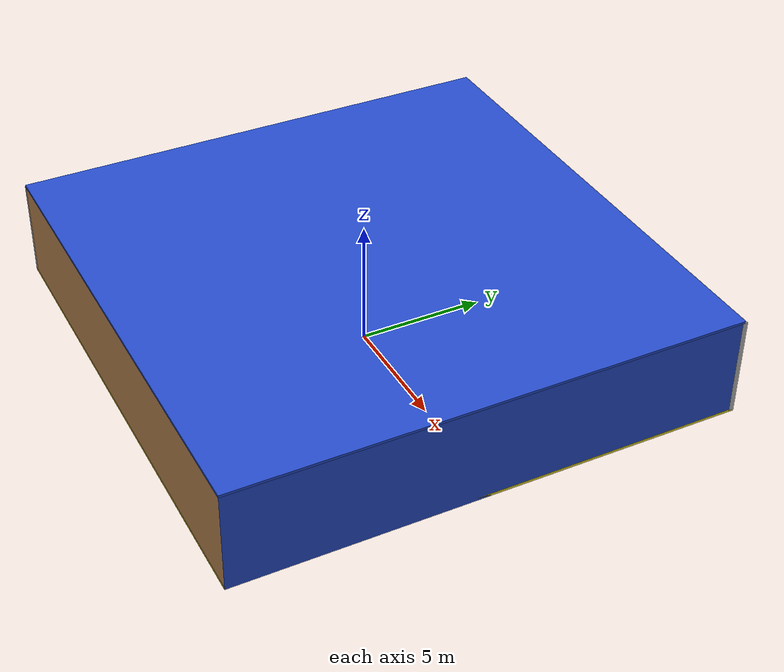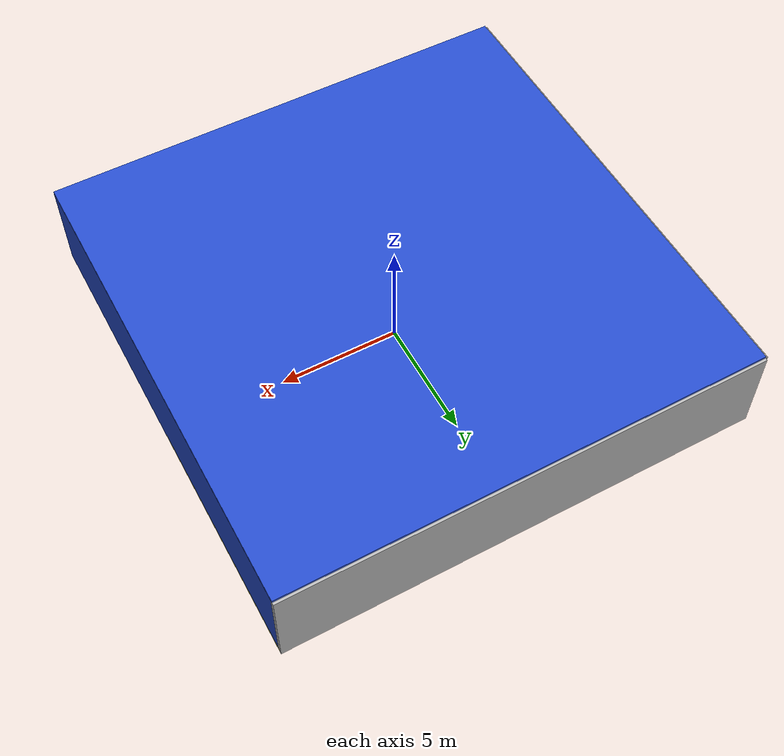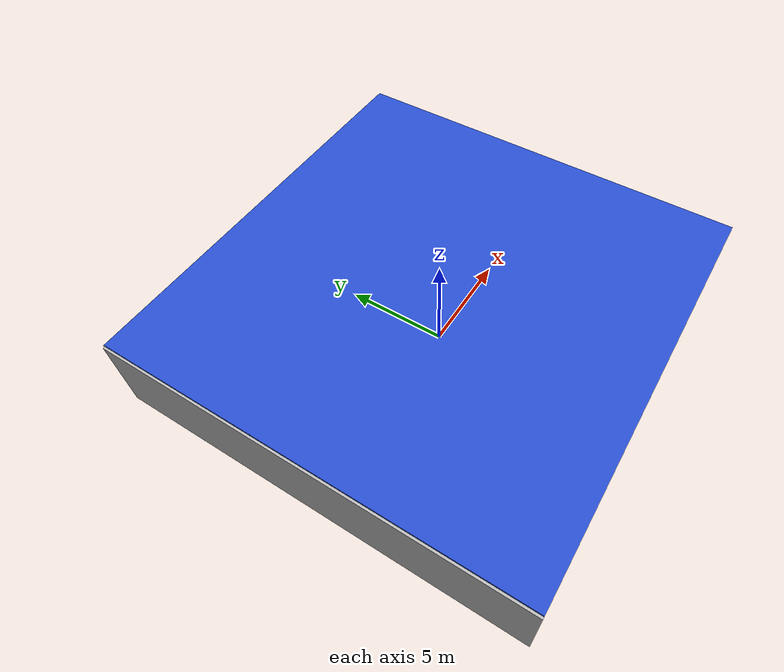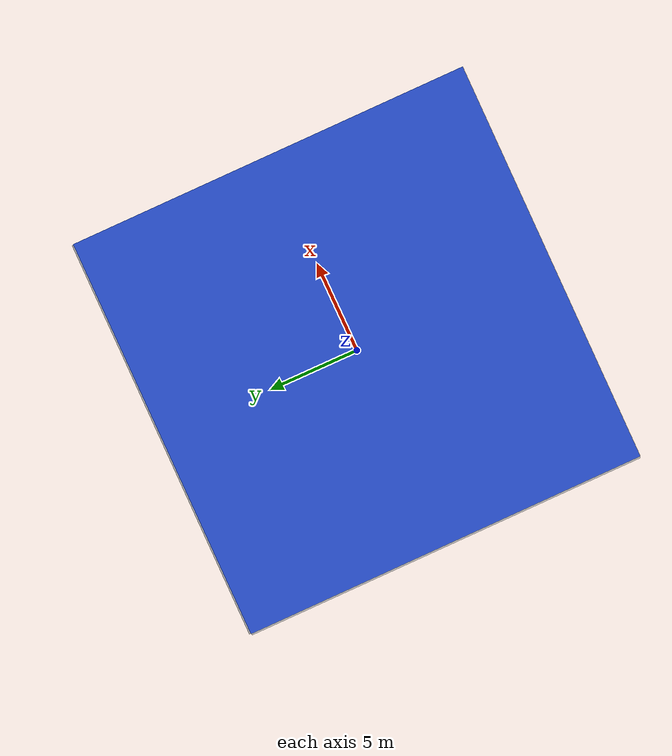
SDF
<sdf version="1.4">
 <world name="default">
  <physics type="ode">
   <max_step_size>0.001</max_step_size>
   <real_time_factor>1</real_time_factor>
   <real_time_update_rate>1000</real_time_update_rate>
   <gravity>0 0 -9.8</gravity>
  </physics>
  <scene><ambient>0.4 0.4 0.4 1</ambient><background>0.7 0.7 0.7 1</background><shadows>1</shadows></scene>
  <model name="Surrounding">
   <static>1</static>
   <link name="Ceiling">
    <collision name="Ceiling_Collision"><geometry><box><size>20 20 0.1</size></box></geometry></collision>
    <visual name="Ceiling_Visual">
     <geometry><box><size>20 20 0.1</size></box></geometry>
     <material>
      <script><uri>file://media/materials/scripts/gazebo.material</uri><name>Gazebo/BlueLaser</name></script>
     </material>
    </visual>
    <pose>0 0 4.05 0 0 0</pose>
   </link>
   <link name="Wall_South">
    <collision name="Wall_South_Collision">
     <geometry><box><size>20 0 4</size></box></geometry>
     <pose>0 0 2 0 -0 0</pose>
    </collision>
    <visual name="Wall_South_Visual">
     <pose>0 0 2 0 -0 0</pose>
     <geometry><box><size>20 0 4</size></box></geometry>
     <material>
      <script><uri>file://media/materials/scripts/gazebo.material</uri><name>Gazebo/WoodFloor</name></script>
     </material>
    </visual>
    <velocity_decay><linear>0</linear><angular>0</angular></velocity_decay>
    <pose>0 -10 0 0 -0 0</pose>
   </link>
   <link name="Wall_East">
    <collision name="Wall_21_Collision">
     <geometry><box><size>20 0 4</size></box></geometry>
     <pose>0 0 2 0 -0 0</pose>
    </collision>
    <visual name="Wall_21_Visual">
     <pose>0 0 2 0 -0 0</pose>
     <geometry><box><size>20 0 4</size></box></geometry>
     <material>
      <script><uri>file://media/materials/scripts/gazebo.material</uri><name>Gazebo/Blue</name></script>
     </material>
    </visual>
    <velocity_decay><linear>0</linear><angular>0</angular></velocity_decay>
    <pose>10 0 0 0 -0 1.5708</pose>
   </link>
   <link name="Wall_North">
    <collision name="Wall_22_Collision">
     <geometry><box><size>20 0.2 4</size></box></geometry>
     <pose>0 0 2 0 -0 0</pose>
    </collision>
    <visual name="Wall_22_Visual">
     <pose>0 0 2 0 -0 0</pose>
     <geometry><box><size>20 0.2 4</size></box></geometry>
     <material>
      <script><uri>file://media/materials/scripts/gazebo.material</uri><name>Gazebo/Pioneer2Body</name></script>
     </material>
    </visual>
    <velocity_decay><linear>0</linear><angular>0</angular></velocity_decay>
    <pose>0 10 0 0 -0 0</pose>
   </link>
   <link name="Wall_West">
    <collision name="Wall_23_Collision">
     <geometry><box><size>20 0.2 4</size></box></geometry>
     <pose>0 0 2 0 -0 0</pose>
    </collision>
    <visual name="Wall_23_Visual">
     <pose>0 0 2 0 -0 0</pose>
     <geometry><box><size>20 0.2 4</size></box></geometry>
     <material>
      <script><uri>file://media/materials/scripts/gazebo.material</uri><name>Gazebo/PioneerBody</name></script>
     </material>
    </visual>
    <velocity_decay><linear>0</linear><angular>0</angular></velocity_decay>
    <pose>-10 0 0 0 0 -1.5708</pose>
   </link>
   <link name="Ground_link">
    <collision name="collision">
     <pose>0 0 .05 0 -0 0</pose>
     <geometry><box><size>20 20 0.1</size></box></geometry>
    </collision>
    <visual name="visual">
     <pose>0 0 .05 0 -0 0</pose>
     <geometry><box><size>20 20 0.1</size></box></geometry>
     <material>
      <script><uri>file://media/materials/scripts/gazebo.material</uri><name>Gazebo/YellowGlow</name></script>
     </material>
    </visual>
   </link>
   <static>1</static>
  </model>
  <spherical_coordinates>
   <surface_model>EARTH_WGS84</surface_model>
   <latitude_deg>0</latitude_deg>
   <longitude_deg>0</longitude_deg>
   <elevation>0</elevation>
   <heading_deg>0</heading_deg>
  </spherical_coordinates>
  <light name="lightball_0" type="diffuse">
   <diffuse>0.8 0.8 0.8 1</diffuse>
   <specular>0.2 0.2 0.2 1</specular>
   <attenuation>
    <range>100</range>
    <constant>0.7</constant>
    <linear>0.01</linear>
    <quadratic>0.001</quadratic>
   </attenuation>
   <direction>-0.5 0.1 -0.9</direction>
   <pose>0.152946987201 -1.37881453084 1.82395652473 0 0 0</pose>
  </light>
  <light name="lightball_1" type="diffuse">
   <diffuse>0.8 0.8 0.8 1</diffuse>
   <specular>0.2 0.2 0.2 1</specular>
   <attenuation>
    <range>100</range>
    <constant>0.7</constant>
    <linear>0.01</linear>
    <quadratic>0.001</quadratic>
   </attenuation>
   <direction>-0.5 0.1 -0.9</direction>
   <pose>5.38354570814 -4.50208348168 0.810496122052 0 0 0</pose>
  </light>
  <light name="lightball_2" type="diffuse">
   <diffuse>0.8 0.8 0.8 1</diffuse>
   <specular>0.2 0.2 0.2 1</specular>
   <attenuation>
    <range>100</range>
    <constant>0.7</constant>
    <linear>0.01</linear>
    <quadratic>0.001</quadratic>
   </attenuation>
   <direction>-0.5 0.1 -0.9</direction>
   <pose>-0.987616549849 3.05427753 2.39908480931 0 0 0</pose>
  </light>
  <light name="lightball_3" type="diffuse">
   <diffuse>0.8 0.8 0.8 1</diffuse>
   <specular>0.2 0.2 0.2 1</specular>
   <attenuation>
    <range>100</range>
    <constant>0.7</constant>
    <linear>0.01</linear>
    <quadratic>0.001</quadratic>
   </attenuation>
   <direction>-0.5 0.1 -0.9</direction>
   <pose>1.22952944671 -9.36627653688 3.14458470963 0 0 0</pose>
  </light>
  <light name="lightball_4" type="diffuse">
   <diffuse>0.8 0.8 0.8 1</diffuse>
   <specular>0.2 0.2 0.2 1</specular>
   <attenuation>
    <range>100</range>
    <constant>0.7</constant>
    <linear>0.01</linear>
    <quadratic>0.001</quadratic>
   </attenuation>
   <direction>-0.5 0.1 -0.9</direction>
   <pose>-3.9203808399 -8.39041515482 1.75957656462 0 0 0</pose>
  </light>
  <light name="lightball_5" type="diffuse">
   <diffuse>0.8 0.8 0.8 1</diffuse>
   <specular>0.2 0.2 0.2 1</specular>
   <attenuation>
    <range>100</range>
    <constant>0.7</constant>
    <linear>0.01</linear>
    <quadratic>0.001</quadratic>
   </attenuation>
   <direction>-0.5 0.1 -0.9</direction>
   <pose>1.61804655401 1.34181642684 2.04071645097 0 0 0</pose>
  </light>
  <light name="lightball_6" type="diffuse">
   <diffuse>0.8 0.8 0.8 1</diffuse>
   <specular>0.2 0.2 0.2 1</specular>
   <attenuation>
    <range>100</range>
    <constant>0.7</constant>
    <linear>0.01</linear>
    <quadratic>0.001</quadratic>
   </attenuation>
   <direction>-0.5 0.1 -0.9</direction>
   <pose>-4.57333165743 -4.00371490663 3.56426438611 0 0 0</pose>
  </light>
  <light name="lightball_7" type="diffuse">
   <diffuse>0.8 0.8 0.8 1</diffuse>
   <specular>0.2 0.2 0.2 1</specular>
   <attenuation>
    <range>100</range>
    <constant>0.7</constant>
    <linear>0.01</linear>
    <quadratic>0.001</quadratic>
   </attenuation>
   <direction>-0.5 0.1 -0.9</direction>
   <pose>8.3232346603 -3.06040392546 2.27750792074 0 0 0</pose>
  </light>
  <light name="lightball_8" type="diffuse">
   <diffuse>0.8 0.8 0.8 1</diffuse>
   <specular>0.2 0.2 0.2 1</specular>
   <attenuation>
    <range>100</range>
    <constant>0.7</constant>
    <linear>0.01</linear>
    <quadratic>0.001</quadratic>
   </attenuation>
   <direction>-0.5 0.1 -0.9</direction>
   <pose>-7.83386958525 -1.82520623961 1.35202161012 0 0 0</pose>
  </light>
  <light name="lightball_9" type="diffuse">
   <diffuse>0.8 0.8 0.8 1</diffuse>
   <specular>0.2 0.2 0.2 1</specular>
   <attenuation>
    <range>100</range>
    <constant>0.7</constant>
    <linear>0.01</linear>
    <quadratic>0.001</quadratic>
   </attenuation>
   <direction>-0.5 0.1 -0.9</direction>
   <pose>2.53177015106 5.26500289104 0.51630272195 0 0 0</pose>
  </light>
  <light name="lightball_10" type="diffuse">
   <diffuse>0.8 0.8 0.8 1</diffuse>
   <specular>0.2 0.2 0.2 1</specular>
   <attenuation>
    <range>100</range>
    <constant>0.7</constant>
    <linear>0.01</linear>
    <quadratic>0.001</quadratic>
   </attenuation>
   <direction>-0.5 0.1 -0.9</direction>
   <pose>3.74650395261 -8.39352837669 3.51036501163 0 0 0</pose>
  </light>
  <light name="lightball_11" type="diffuse">
   <diffuse>0.8 0.8 0.8 1</diffuse>
   <specular>0.2 0.2 0.2 1</specular>
   <attenuation>
    <range>100</range>
    <constant>0.7</constant>
    <linear>0.01</linear>
    <quadratic>0.001</quadratic>
   </attenuation>
   <direction>-0.5 0.1 -0.9</direction>
   <pose>5.86518014262 0.21140708663 1.10085274384 0 0 0</pose>
  </light>
  <light name="lightball_12" type="diffuse">
   <diffuse>0.8 0.8 0.8 1</diffuse>
   <specular>0.2 0.2 0.2 1</specular>
   <attenuation>
    <range>100</range>
    <constant>0.7</constant>
    <linear>0.01</linear>
    <quadratic>0.001</quadratic>
   </attenuation>
   <direction>-0.5 0.1 -0.9</direction>
   <pose>-8.93485439311 -5.01832161511 2.67862664346 0 0 0</pose>
  </light>
  <include>
   <uri>model://textured_shapes</uri>
   <pose>-8.23753359091 5.44729428824 0 0 0 0.632979209796</pose>
  </include>
  <include>
   <uri>model://textured_shapes</uri>
   <pose>-0.422479824174 -1.77269237239 0 0 0 2.26247675883</pose>
  </include>
  <include><uri>model://cabinet</uri><pose>-0.988191014932 3.33705217414 0 0 0 1.001230833</pose></include>
  <include>
   <uri>model://robocup_3Dsim_goal</uri>
   <pose>0.939780745861 -5.08558107418 0 0 0 2.30142167991</pose>
  </include>
  <include><uri>model://cabinet</uri><pose>0.7040884203 2.40995595455 0 0 0 1.17774109695</pose></include>
  <include><uri>model://cabinet</uri><pose>1.14675142881 4.70438687109 0 0 0 2.89330765355</pose></include>
 </world>
</sdf>

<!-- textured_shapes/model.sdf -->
<sdf version="1.6">
  <model name="textured_shapes">
    <pose>0 0 0.5 0 0 0</pose>
    <link name="box">
      <pose>0 -1.5 0 0 0 0</pose>
      <collision name="collision">
        <geometry>
          <box>
            <size>1 1 1</size>
          </box>
        </geometry>
      </collision>
      <visual name="visual">
        <geometry>
          <box>
            <size>1 1 1</size>
          </box>
        </geometry>
        <material>
          <script>
            <uri>model://../model_source/models/textured_shapes/materials/scripts</uri>
            <uri>model://../model_source/models/textured_shapes/materials/textures</uri>
            <name>TexturedShape/Squares</name>
          </script>
        </material>
      </visual>
    </link>
    <link name="sphere">
      <collision name="collision">
        <geometry>
          <sphere>
            <radius>0.5</radius>
          </sphere>
        </geometry>
      </collision>
      <visual name="visual">
        <geometry>
          <sphere>
            <radius>0.5</radius>
          </sphere>
        </geometry>
        <material>
          <script>
            <uri>model://../model_source/models/textured_shapes/materials/scripts</uri>
            <uri>model://../model_source/models/textured_shapes/materials/textures</uri>
            <name>TexturedShape/Squares</name>
          </script>
        </material>
      </visual>
    </link>
    <link name="cylinder">
      <pose>0 1.5 0 0 0 0</pose>
      <collision name="collision">
        <geometry>
          <cylinder>
            <radius>0.5</radius>
            <length>1</length>
          </cylinder>
        </geometry>
      </collision>
      <visual name="visual">
        <geometry>
          <cylinder>
            <radius>0.5</radius>
            <length>1</length>
          </cylinder>
        </geometry>
        <material>
          <script>
            <uri>model://../model_source/models/textured_shapes/materials/scripts</uri>
            <uri>model://../model_source/models/textured_shapes/materials/textures</uri>
            <name>TexturedShape/Squares</name>
          </script>
        </material>
      </visual>
    </link>
  </model>
</sdf>

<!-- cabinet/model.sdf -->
<sdf version="1.5">
  <model name="cabinet">
    <static>true</static>
    <link name="cabinet_bottom_plate">
      <inertial>
        <pose>0 0 -1 0 0 0</pose>
        <inertia>
          <ixx>2.050000</ixx>
          <ixy>0</ixy>
          <ixz>0</ixz>
          <iyy>2.050000</iyy>
          <iyz>0</iyz>
          <izz>2.050000</izz>
        </inertia>
        <mass>25.000000</mass>
      </inertial>
      <collision name="cabinet_bottom_plate_geom">
        <pose>0 0 0.010000 0 0 0</pose>
        <geometry>
          <box>
            <size>0.450000 0.450000 0.020000</size>
          </box>
        </geometry>
      </collision>
      <visual name="cabinet_bottom_plate_geom_visual">
        <pose>0 0 0.010000 0 0 0</pose>
        <geometry>
          <box>
            <size>0.450000 0.450000 0.020000</size>
          </box>
        </geometry>
        <material>
          <script>
            <uri>model://media/materials/scripts/gazebo.material</uri>
            <name>Gazebo/Wood</name>
          </script>
        </material>
      </visual>
      <collision name="cabinet_bottom_plate_geom_cabinet_back_plate">
        <pose>0.235000 0 0.510000 0 0 0</pose>
        <geometry>
          <box>
            <size>0.020000 0.450000 1.020000</size>
          </box>
        </geometry>
      </collision>
      <visual name="cabinet_bottom_plate_geom_cabinet_back_plate_visual">
        <pose>0.235000 0 0.510000 0 0 0</pose>
        <geometry>
          <box>
            <size>0.020000 0.450000 1.020000</size>
          </box>
        </geometry>
        <material>
          <script>
            <uri>model://media/materials/scripts/gazebo.material</uri>
            <name>Gazebo/Wood</name>
          </script>
        </material>
      </visual>
      <collision name="cabinet_bottom_plate_geom_cabinet_left_plate">
        <pose>0 0.235000 0.510000 0 0 0</pose>
        <geometry>
          <box>
            <size>0.450000 0.020000 1.020000</size>
          </box>
        </geometry>
      </collision>
      <visual name="cabinet_bottom_plate_geom_cabinet_left_plate_visual">
        <pose>0 0.235000 0.510000 0 0 0</pose>
        <geometry>
          <box>
            <size>0.450000 0.020000 1.020000</size>
          </box>
        </geometry>
        <material>
          <script>
            <uri>model://media/materials/scripts/gazebo.material</uri>
            <name>Gazebo/Wood</name>
          </script>
        </material>
      </visual>
      <collision name="cabinet_bottom_plate_geom_cabinet_middle_plate">
        <pose>0 0 0.510000 0 0 0</pose>
        <geometry>
          <box>
            <size>0.450000 0.450000 0.020000</size>
          </box>
        </geometry>
      </collision>
      <visual name="cabinet_bottom_plate_geom_cabinet_middle_plate_visual">
        <pose>0 0 0.510000 0 0 0</pose>
        <geometry>
          <box>
            <size>0.450000 0.450000 0.020000</size>
          </box>
        </geometry>
        <material>
          <script>
            <uri>model://media/materials/scripts/gazebo.material</uri>
            <name>Gazebo/Wood</name>
          </script>
        </material>
      </visual>
      <collision name="cabinet_bottom_plate_geom_cabinet_right_plate">
        <pose>0 -0.235000 0.510000 0 0 0</pose>
        <geometry>
          <box>
            <size>0.450000 0.020000 1.020000</size>
          </box>
        </geometry>
      </collision>
      <visual name="cabinet_bottom_plate_geom_cabinet_right_plate_visual">
        <pose>0 -0.235000 0.510000 0 0 0</pose>
        <geometry>
          <box>
            <size>0.450000 0.020000 1.020000</size>
          </box>
        </geometry>
        <material>
          <script>
            <uri>model://media/materials/scripts/gazebo.material</uri>
            <name>Gazebo/Wood</name>
          </script>
        </material>
      </visual>
      <collision name="cabinet_bottom_plate_geom_cabinet_top_plate">
        <pose>0 0 1.010000 0 0 0</pose>
        <geometry>
          <box>
            <size>0.450000 0.450000 0.020000</size>
          </box>
        </geometry>
      </collision>
      <visual name="cabinet_bottom_plate_geom_cabinet_top_plate_visual">
        <pose>0 0 1.010000 0 0 0</pose>
        <geometry>
          <box>
            <size>0.450000 0.450000 0.020000</size>
          </box>
        </geometry>
        <material>
          <script>
            <uri>model://media/materials/scripts/gazebo.material</uri>
            <name>Gazebo/Wood</name>
          </script>
        </material>
      </visual>
    </link>
  </model>
</sdf>

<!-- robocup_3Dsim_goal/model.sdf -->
<sdf version="1.5">
  <model name="robocup_3d_goal">
    <static>true</static>
    <link name="left_post">
      <pose>0 1.05 0.45 0 0 0</pose>
      <collision name="collision">
        <geometry>
          <cylinder>
            <radius>0.05</radius>
            <length>0.9</length>
          </cylinder>
        </geometry>
      </collision>
      <visual name="visual">
        <geometry>
          <cylinder>
            <radius>0.05</radius>
            <length>0.9</length>
          </cylinder>
        </geometry>
        <material>
          <script>
            <uri>file://media/materials/scripts/gazebo.material</uri>
            <name>Gazebo/ZincYellow</name>
          </script>
        </material>
      </visual>
    </link>
    <link name="left_support_horiz_lower">
      <pose>0.30 1.05 0.01 0 0 0</pose>
      <collision name="collision">
        <geometry>
          <box>
            <size>0.50 0.02 0.02</size>
          </box>
        </geometry>
      </collision>
      <visual name="visual">
        <geometry>
          <box>
            <size>0.50 0.02 0.02</size>
          </box>
        </geometry>
        <material>
          <script>
            <uri>file://media/materials/scripts/gazebo.material</uri>
            <name>Gazebo/White</name>
          </script>
        </material>
      </visual>
    </link>
    <link name="left_support_horiz_upper">
      <pose>0.30 1.05 0.79 0 0 0</pose>
      <collision name="collision">
        <geometry>
          <box>
            <size>0.50 0.02 0.02</size>
          </box>
        </geometry>
      </collision>
      <visual name="visual">
        <geometry>
          <box>
            <size>0.50 0.02 0.02</size>
          </box>
        </geometry>
        <material>
          <script>
            <uri>file://media/materials/scripts/gazebo.material</uri>
            <name>Gazebo/White</name>
          </script>
        </material>
      </visual>
    </link>
    <link name="left_support_vertical">
      <pose>0.56 1.05 0.4 0 1.5708 0</pose>
      <collision name="collision">
        <geometry>
          <box>
            <size>0.80 0.02 0.02</size>
          </box>
        </geometry>
      </collision>
      <visual name="visual">
        <geometry>
          <box>
            <size>0.80 0.02 0.02</size>
          </box>
        </geometry>
        <material>
          <script>
            <uri>file://media/materials/scripts/gazebo.material</uri>
            <name>Gazebo/White</name>
          </script>
        </material>
      </visual>
    </link>
    <link name="right_support_horiz_lower">
      <pose>0.30 -1.05 0.01 0 0 0</pose>
      <collision name="collision">
        <geometry>
          <box>
            <size>0.50 0.02 0.02</size>
          </box>
        </geometry>
      </collision>
      <visual name="visual">
        <geometry>
          <box>
            <size>0.50 0.02 0.02</size>
          </box>
        </geometry>
        <material>
          <script>
            <uri>file://media/materials/scripts/gazebo.material</uri>
            <name>Gazebo/White</name>
          </script>
        </material>
      </visual>
    </link>
    <link name="right_support_horiz_upper">
      <pose>0.30 -1.05 0.79 0 0 0</pose>
      <collision name="collision">
        <geometry>
          <box>
            <size>0.50 0.02 0.02</size>
          </box>
        </geometry>
      </collision>
      <visual name="visual">
        <geometry>
          <box>
            <size>0.50 0.02 0.02</size>
          </box>
        </geometry>
        <material>
          <script>
            <uri>file://media/materials/scripts/gazebo.material</uri>
            <name>Gazebo/White</name>
          </script>
        </material>
      </visual>
    </link>
    <link name="right_support_vertical">
      <pose>0.56 -1.05 0.4 0 1.5708 0</pose>
      <collision name="collision">
        <geometry>
          <box>
            <size>0.80 0.02 0.02</size>
          </box>
        </geometry>
      </collision>
      <visual name="visual">
        <geometry>
          <box>
            <size>0.80 0.02 0.02</size>
          </box>
        </geometry>
        <material>
          <script>
            <uri>file://media/materials/scripts/gazebo.material</uri>
            <name>Gazebo/White</name>
          </script>
        </material>
      </visual>
    </link>
    <link name="center_support_horiz_lower">
      <pose>0.56 0 0.01 0 1.5708 0</pose>
      <collision name="collision">
        <geometry>
          <box>
            <size>0.02 2.08 0.02</size>
          </box>
        </geometry>
      </collision>
      <visual name="visual">
        <geometry>
          <box>
            <size>0.02 2.08 0.02</size>
          </box>
        </geometry>
        <material>
          <script>
            <uri>file://media/materials/scripts/gazebo.material</uri>
            <name>Gazebo/White</name>
          </script>
        </material>
      </visual>
    </link>
    <link name="center_support_horiz_upper">
      <pose>0.56 0 0.79 0 1.5708 0</pose>
      <collision name="collision">
        <geometry>
          <box>
            <size>0.02 2.08 0.02</size>
          </box>
        </geometry>
      </collision>
      <visual name="visual">
        <geometry>
          <box>
            <size>0.02 2.08 0.02</size>
          </box>
        </geometry>
        <material>
          <script>
            <uri>file://media/materials/scripts/gazebo.material</uri>
            <name>Gazebo/White</name>
          </script>
        </material>
      </visual>
    </link>
    <link name="right_post">
      <pose>0 -1.05 0.45 0 0 0</pose>
      <collision name="collision">
        <geometry>
          <cylinder>
            <radius>0.05</radius>
            <length>0.9</length>
          </cylinder>
        </geometry>
      </collision>
      <visual name="visual">
        <geometry>
          <cylinder>
            <radius>0.05</radius>
            <length>0.9</length>
          </cylinder>
        </geometry>
        <material>
          <script>
            <uri>file://media/materials/scripts/gazebo.material</uri>
            <name>Gazebo/ZincYellow</name>
          </script>
        </material>
      </visual>
    </link>
    <link name="crossbar">
      <pose>0 0 0.85 1.57 1.57 0</pose>
      <collision name="collision">
        <geometry>
          <cylinder>
            <radius>0.05</radius>
            <length>2.0</length>
          </cylinder>
        </geometry>
      </collision>
      <visual name="visual">
        <geometry>
          <cylinder>
            <radius>0.05</radius>
            <length>2.0</length>
          </cylinder>
        </geometry>
        <material>
          <script>
            <uri>file://media/materials/scripts/gazebo.material</uri>
            <name>Gazebo/ZincYellow</name>
          </script>
        </material>
      </visual>
    </link>
    <link name="center_net">
      <pose>0.56 0 0.40 0 0 0</pose>
      <collision name="collision">
        <geometry>
          <box>
            <size>0.01 2.1 0.80</size>
          </box>
        </geometry>
      </collision>
      <visual name="visual">
        <geometry>
          <box>
            <size>0.01 2.1 0.80</size>
          </box>
        </geometry>
        <material>
          <script>
            <uri>model://../model_source/models/robocup09_spl_field/materials/scripts/</uri>
            <uri>model://../model_source/models/robocup09_spl_field/materials/textures/</uri>
            <name>RoboCup/Net</name>
          </script>
        </material>
      </visual>
    </link>
    <link name="left_net">
      <pose>0.30 1.05 0.40 0 0 0</pose>
      <collision name="collision">
        <geometry>
          <box>
            <size>0.50 0.01 0.76</size>
          </box>
        </geometry>
      </collision>
      <visual name="visual">
        <geometry>
          <box>
            <size>0.50 0.01 0.76</size>
          </box>
        </geometry>
        <material>
          <script>
            <uri>model://../model_source/models/robocup09_spl_field/materials/scripts/</uri>
            <uri>model://../model_source/models/robocup09_spl_field/materials/textures/</uri>
            <name>RoboCup/Net</name>
          </script>
        </material>
      </visual>
    </link>
    <link name="right_net">
      <pose>0.30 -1.05 0.40 0 0 0</pose>
      <collision name="collision">
        <geometry>
          <box>
            <size>0.50 0.01 0.76</size>
          </box>
        </geometry>
      </collision>
      <visual name="visual">
        <geometry>
          <box>
            <size>0.50 0.01 0.76</size>
          </box>
        </geometry>
        <material>
          <script>
            <uri>model://../model_source/models/robocup09_spl_field/materials/scripts/</uri>
            <uri>model://../model_source/models/robocup09_spl_field/materials/textures/</uri>
            <name>RoboCup/Net</name>
          </script>
        </material>
      </visual>
    </link>
  </model>
</sdf>
